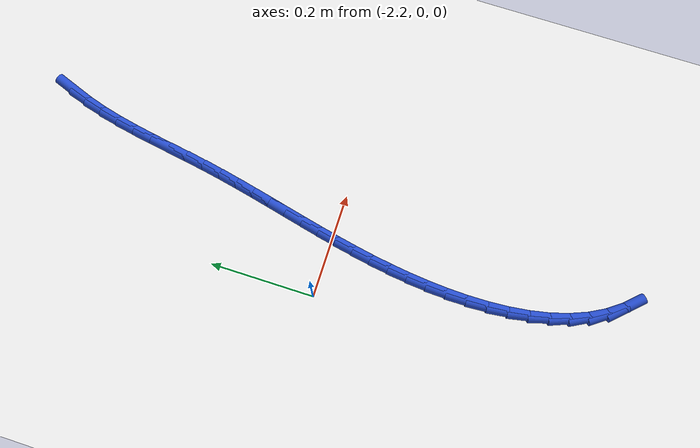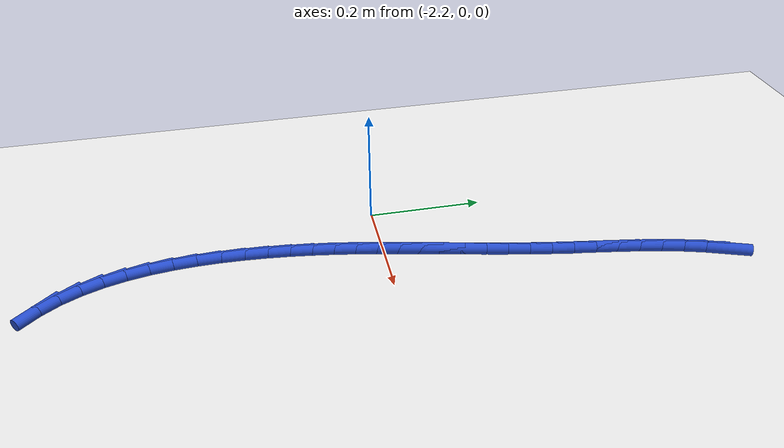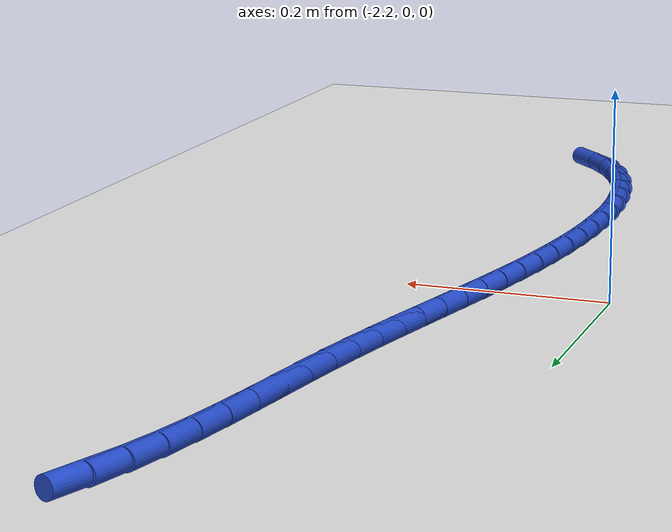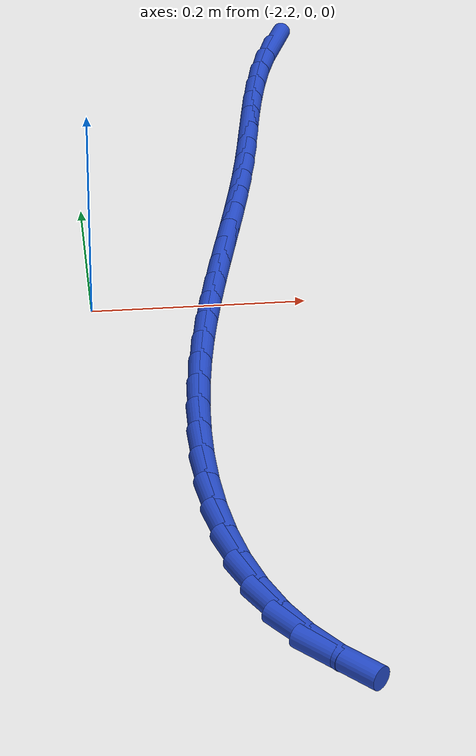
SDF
<sdf version="1.6">
 <world name="default">
  <model name="ground_plane">
   <static>1</static>
   <link name="link">
    <collision name="collision">
     <geometry><plane><normal>0 0 1</normal><size>100 100</size></plane></geometry>
     <surface><friction><ode><mu>100</mu><mu2>50</mu2></ode></friction></surface>
    </collision>
    <visual name="visual">
     <cast_shadows>0</cast_shadows>
     <geometry><plane><normal>0 0 1</normal><size>100 100</size></plane></geometry>
     <material>
      <script><uri>file://media/materials/scripts/gazebo.material</uri><name>Gazebo/WhiteGlow</name></script>
     </material>
    </visual>
   </link>
  </model>
  <model name="line">
   <link name="link_79">
    <pose>-1.9620376920560596 0.5663185615961986 0.01 0 1.57 1.2178457590242198</pose>
    <collision name="collision">
     <geometry><cylinder><radius>0.01</radius><length>0.08</length></cylinder></geometry>
    </collision>
    <visual name="visual">
     <material>
      <script><name>Gazebo/Blue</name><uri>file://media/materials/scripts/gazebo.material</uri></script>
     </material>
     <geometry><cylinder><radius>0.01</radius><length>0.08</length></cylinder></geometry>
    </visual>
   </link>
   <link name="link_80">
    <pose>-1.9745349150667229 0.5323933633324518 0.01 0 1.57 1.2811137499216871</pose>
    <collision name="collision">
     <geometry><cylinder><radius>0.01</radius><length>0.08</length></cylinder></geometry>
    </collision>
    <visual name="visual">
     <material>
      <script><name>Gazebo/Blue</name><uri>file://media/materials/scripts/gazebo.material</uri></script>
     </material>
     <geometry><cylinder><radius>0.01</radius><length>0.08</length></cylinder></geometry>
    </visual>
   </link>
   <link name="link_81">
    <pose>-1.9850283503999318 0.49718842359990556 0.01 0 1.57 1.3306486164743747</pose>
    <collision name="collision">
     <geometry><cylinder><radius>0.01</radius><length>0.08</length></cylinder></geometry>
    </collision>
    <visual name="visual">
     <material>
      <script><name>Gazebo/Blue</name><uri>file://media/materials/scripts/gazebo.material</uri></script>
     </material>
     <geometry><cylinder><radius>0.01</radius><length>0.08</length></cylinder></geometry>
    </visual>
   </link>
   <link name="link_82">
    <pose>-1.9938964997957358 0.46097316174443836 0.01 0 1.57 1.3674203378683245</pose>
    <collision name="collision">
     <geometry><cylinder><radius>0.01</radius><length>0.08</length></cylinder></geometry>
    </collision>
    <visual name="visual">
     <material>
      <script><name>Gazebo/Blue</name><uri>file://media/materials/scripts/gazebo.material</uri></script>
     </material>
     <geometry><cylinder><radius>0.01</radius><length>0.08</length></cylinder></geometry>
    </visual>
   </link>
   <link name="link_83">
    <pose>-2.001517864994184 0.4240169971119282 0.01 0 1.57 1.392286598869336</pose>
    <collision name="collision">
     <geometry><cylinder><radius>0.01</radius><length>0.08</length></cylinder></geometry>
    </collision>
    <visual name="visual">
     <material>
      <script><name>Gazebo/Blue</name><uri>file://media/materials/scripts/gazebo.material</uri></script>
     </material>
     <geometry><cylinder><radius>0.01</radius><length>0.08</length></cylinder></geometry>
    </visual>
   </link>
   <link name="link_84">
    <pose>-2.008270947735328 0.38658934904825243 0.01 0 1.57 1.4058626970710961</pose>
    <collision name="collision">
     <geometry><cylinder><radius>0.01</radius><length>0.08</length></cylinder></geometry>
    </collision>
    <visual name="visual">
     <material>
      <script><name>Gazebo/Blue</name><uri>file://media/materials/scripts/gazebo.material</uri></script>
     </material>
     <geometry><cylinder><radius>0.01</radius><length>0.08</length></cylinder></geometry>
    </visual>
   </link>
   <link name="link_85">
    <pose>-2.0145342497592167 0.34895963689928927 0.01 0 1.57 1.408456044278473</pose>
    <collision name="collision">
     <geometry><cylinder><radius>0.01</radius><length>0.08</length></cylinder></geometry>
    </collision>
    <visual name="visual">
     <material>
      <script><name>Gazebo/Blue</name><uri>file://media/materials/scripts/gazebo.material</uri></script>
     </material>
     <geometry><cylinder><radius>0.01</radius><length>0.08</length></cylinder></geometry>
    </visual>
   </link>
   <link name="link_86">
    <pose>-2.0206862728058987 0.3113972800109169 0.01 0 1.57 1.400033932852301</pose>
    <collision name="collision">
     <geometry><cylinder><radius>0.01</radius><length>0.08</length></cylinder></geometry>
    </collision>
    <visual name="visual">
     <material>
      <script><name>Gazebo/Blue</name><uri>file://media/materials/scripts/gazebo.material</uri></script>
     </material>
     <geometry><cylinder><radius>0.01</radius><length>0.08</length></cylinder></geometry>
    </visual>
   </link>
   <link name="link_87">
    <pose>-2.027105518615425 0.2741716977290123 0.01 0 1.57 1.3825338629292288</pose>
    <collision name="collision">
     <geometry><cylinder><radius>0.01</radius><length>0.08</length></cylinder></geometry>
    </collision>
    <visual name="visual">
     <material>
      <script><name>Gazebo/Blue</name><uri>file://media/materials/scripts/gazebo.material</uri></script>
     </material>
     <geometry><cylinder><radius>0.01</radius><length>0.08</length></cylinder></geometry>
    </visual>
   </link>
   <link name="link_88">
    <pose>-2.0340927615261264 0.23749684491850792 0.01 0 1.57 1.3660504790088808</pose>
    <collision name="collision">
     <geometry><cylinder><radius>0.01</radius><length>0.08</length></cylinder></geometry>
    </collision>
    <visual name="visual">
     <material>
      <script><name>Gazebo/Blue</name><uri>file://media/materials/scripts/gazebo.material</uri></script>
     </material>
     <geometry><cylinder><radius>0.01</radius><length>0.08</length></cylinder></geometry>
    </visual>
   </link>
   <link name="link_89">
    <pose>-2.0416012135900243 0.2013386640139712 0.01 0 1.57 1.3536618402424256</pose>
    <collision name="collision">
     <geometry><cylinder><radius>0.01</radius><length>0.08</length></cylinder></geometry>
    </collision>
    <visual name="visual">
     <material>
      <script><name>Gazebo/Blue</name><uri>file://media/materials/scripts/gazebo.material</uri></script>
     </material>
     <geometry><cylinder><radius>0.01</radius><length>0.08</length></cylinder></geometry>
    </visual>
   </link>
   <link name="link_90">
    <pose>-2.0494869780217764 0.16559380282361508 0.01 0 1.57 1.3455549843047392</pose>
    <collision name="collision">
     <geometry><cylinder><radius>0.01</radius><length>0.08</length></cylinder></geometry>
    </collision>
    <visual name="visual">
     <material>
      <script><name>Gazebo/Blue</name><uri>file://media/materials/scripts/gazebo.material</uri></script>
     </material>
     <geometry><cylinder><radius>0.01</radius><length>0.08</length></cylinder></geometry>
    </visual>
   </link>
   <link name="link_91">
    <pose>-2.0576061535836447 0.13015890597852434 0.01 0 1.57 1.3418672281104156</pose>
    <collision name="collision">
     <geometry><cylinder><radius>0.01</radius><length>0.08</length></cylinder></geometry>
    </collision>
    <visual name="visual">
     <material>
      <script><name>Gazebo/Blue</name><uri>file://media/materials/scripts/gazebo.material</uri></script>
     </material>
     <geometry><cylinder><radius>0.01</radius><length>0.08</length></cylinder></geometry>
    </visual>
   </link>
   <link name="link_92">
    <pose>-2.0658148390378916 0.09493061810978483 0.01 0 1.57 1.3426864507366176</pose>
    <collision name="collision">
     <geometry><cylinder><radius>0.01</radius><length>0.08</length></cylinder></geometry>
    </collision>
    <visual name="visual">
     <material>
      <script><name>Gazebo/Blue</name><uri>file://media/materials/scripts/gazebo.material</uri></script>
     </material>
     <geometry><cylinder><radius>0.01</radius><length>0.08</length></cylinder></geometry>
    </visual>
   </link>
   <link name="link_93">
    <pose>-2.0739691331467762 0.05980558384848233 0.01 0 1.57 1.348050337753554</pose>
    <collision name="collision">
     <geometry><cylinder><radius>0.01</radius><length>0.08</length></cylinder></geometry>
    </collision>
    <visual name="visual">
     <material>
      <script><name>Gazebo/Blue</name><uri>file://media/materials/scripts/gazebo.material</uri></script>
     </material>
     <geometry><cylinder><radius>0.01</radius><length>0.08</length></cylinder></geometry>
    </visual>
   </link>
   <link name="link_94">
    <pose>-2.081925134672563 0.024680447825701717 0.01 0 1.57 1.3579443616122902</pose>
    <collision name="collision">
     <geometry><cylinder><radius>0.01</radius><length>0.08</length></cylinder></geometry>
    </collision>
    <visual name="visual">
     <material>
      <script><name>Gazebo/Blue</name><uri>file://media/materials/scripts/gazebo.material</uri></script>
     </material>
     <geometry><cylinder><radius>0.01</radius><length>0.08</length></cylinder></geometry>
    </visual>
   </link>
   <link name="link_95">
    <pose>-2.0895389423775126 -0.010548145327471177 0.01 0 1.57 1.3722984757282812</pose>
    <collision name="collision">
     <geometry><cylinder><radius>0.01</radius><length>0.08</length></cylinder></geometry>
    </collision>
    <visual name="visual">
     <material>
      <script><name>Gazebo/Blue</name><uri>file://media/materials/scripts/gazebo.material</uri></script>
     </material>
     <geometry><cylinder><radius>0.01</radius><length>0.08</length></cylinder></geometry>
    </visual>
   </link>
   <link name="link_96">
    <pose>-2.096666655023886 -0.04598355097995082 0.01 0 1.57 1.3909828745682344</pose>
    <collision name="collision">
     <geometry><cylinder><radius>0.01</radius><length>0.08</length></cylinder></geometry>
    </collision>
    <visual name="visual">
     <material>
      <script><name>Gazebo/Blue</name><uri>file://media/materials/scripts/gazebo.material</uri></script>
     </material>
     <geometry><cylinder><radius>0.01</radius><length>0.08</length></cylinder></geometry>
    </visual>
   </link>
   <link name="link_97">
    <pose>-2.103164371373946 -0.08172912450065178 0.01 0 1.57 1.4138035531262156</pose>
    <collision name="collision">
     <geometry><cylinder><radius>0.01</radius><length>0.08</length></cylinder></geometry>
    </collision>
    <visual name="visual">
     <material>
      <script><name>Gazebo/Blue</name><uri>file://media/materials/scripts/gazebo.material</uri></script>
     </material>
     <geometry><cylinder><radius>0.01</radius><length>0.08</length></cylinder></geometry>
    </visual>
   </link>
   <link name="link_98">
    <pose>-2.108888190189954 -0.11788822125848772 0.01 0 1.57 1.4404987367272715</pose>
    <collision name="collision">
     <geometry><cylinder><radius>0.01</radius><length>0.08</length></cylinder></geometry>
    </collision>
    <visual name="visual">
     <material>
      <script><name>Gazebo/Blue</name><uri>file://media/materials/scripts/gazebo.material</uri></script>
     </material>
     <geometry><cylinder><radius>0.01</radius><length>0.08</length></cylinder></geometry>
    </visual>
   </link>
   <link name="link_99">
    <pose>-2.1136942102341703 -0.15456419662237467 0.01 0 1.57 1.4707374738841688</pose>
    <collision name="collision">
     <geometry><cylinder><radius>0.01</radius><length>0.08</length></cylinder></geometry>
    </collision>
    <visual name="visual">
     <material>
      <script><name>Gazebo/Blue</name><uri>file://media/materials/scripts/gazebo.material</uri></script>
     </material>
     <geometry><cylinder><radius>0.01</radius><length>0.08</length></cylinder></geometry>
    </visual>
   </link>
   <link name="link_100">
    <pose>-2.1174385302688585 -0.19186040596122644 0.01 0 1.57 1.504144030951073</pose>
    <collision name="collision">
     <geometry><cylinder><radius>0.01</radius><length>0.08</length></cylinder></geometry>
    </collision>
    <visual name="visual">
     <material>
      <script><name>Gazebo/Blue</name><uri>file://media/materials/scripts/gazebo.material</uri></script>
     </material>
     <geometry><cylinder><radius>0.01</radius><length>0.08</length></cylinder></geometry>
    </visual>
   </link>
   <link name="link_101">
    <pose>-2.1199761056431448 -0.2298758483172222 0.01 0 1.57 1.5415327328903567</pose>
    <collision name="collision">
     <geometry><cylinder><radius>0.01</radius><length>0.08</length></cylinder></geometry>
    </collision>
    <visual name="visual">
     <material>
      <script><name>Gazebo/Blue</name><uri>file://media/materials/scripts/gazebo.material</uri></script>
     </material>
     <geometry><cylinder><radius>0.01</radius><length>0.08</length></cylinder></geometry>
    </visual>
   </link>
   <link name="link_102">
    <pose>-2.121106686286746 -0.26849919381707205 0.01 0 1.57 -1.5564927668727688</pose>
    <collision name="collision">
     <geometry><cylinder><radius>0.01</radius><length>0.08</length></cylinder></geometry>
    </collision>
    <visual name="visual">
     <material>
      <script><name>Gazebo/Blue</name><uri>file://media/materials/scripts/gazebo.material</uri></script>
     </material>
     <geometry><cylinder><radius>0.01</radius><length>0.08</length></cylinder></geometry>
    </visual>
   </link>
   <link name="link_103">
    <pose>-2.1205513799651956 -0.3073194912590025 0.01 0 1.57 -1.5054184110264377</pose>
    <collision name="collision">
     <geometry><cylinder><radius>0.01</radius><length>0.08</length></cylinder></geometry>
    </collision>
    <visual name="visual">
     <material>
      <script><name>Gazebo/Blue</name><uri>file://media/materials/scripts/gazebo.material</uri></script>
     </material>
     <geometry><cylinder><radius>0.01</radius><length>0.08</length></cylinder></geometry>
    </visual>
   </link>
   <link name="link_104">
    <pose>-2.1180252789256797 -0.3459028707230559 0.01 0 1.57 -1.445331771218651</pose>
    <collision name="collision">
     <geometry><cylinder><radius>0.01</radius><length>0.08</length></cylinder></geometry>
    </collision>
    <visual name="visual">
     <material>
      <script><name>Gazebo/Blue</name><uri>file://media/materials/scripts/gazebo.material</uri></script>
     </material>
     <geometry><cylinder><radius>0.01</radius><length>0.08</length></cylinder></geometry>
    </visual>
   </link>
   <link name="link_105">
    <pose>-2.1132434754153855 -0.3838154622892738 0.01 0 1.57 -1.3744242978768375</pose>
    <collision name="collision">
     <geometry><cylinder><radius>0.01</radius><length>0.08</length></cylinder></geometry>
    </collision>
    <visual name="visual">
     <material>
      <script><name>Gazebo/Blue</name><uri>file://media/materials/scripts/gazebo.material</uri></script>
     </material>
     <geometry><cylinder><radius>0.01</radius><length>0.08</length></cylinder></geometry>
    </visual>
   </link>
   <link name="link_106">
    <pose>-2.105921061681498 -0.42062339603770005 0.01 0 1.57 -1.2906375982193614</pose>
    <collision name="collision">
     <geometry><cylinder><radius>0.01</radius><length>0.08</length></cylinder></geometry>
    </collision>
    <visual name="visual">
     <material>
      <script><name>Gazebo/Blue</name><uri>file://media/materials/scripts/gazebo.material</uri></script>
     </material>
     <geometry><cylinder><radius>0.01</radius><length>0.08</length></cylinder></geometry>
    </visual>
   </link>
   <link name="link_107">
    <pose>-2.0957731299712057 -0.4558928020483767 0.01 0 1.57 -1.1918558901516383</pose>
    <collision name="collision">
     <geometry><cylinder><radius>0.01</radius><length>0.08</length></cylinder></geometry>
    </collision>
    <visual name="visual">
     <material>
      <script><name>Gazebo/Blue</name><uri>file://media/materials/scripts/gazebo.material</uri></script>
     </material>
     <geometry><cylinder><radius>0.01</radius><length>0.08</length></cylinder></geometry>
    </visual>
   </link>
   <link name="link_108">
    <pose>-2.0825147725316935 -0.4891898104013455 0.01 0 1.57 -1.076347780884253</pose>
    <collision name="collision">
     <geometry><cylinder><radius>0.01</radius><length>0.08</length></cylinder></geometry>
    </collision>
    <visual name="visual">
     <material>
      <script><name>Gazebo/Blue</name><uri>file://media/materials/scripts/gazebo.material</uri></script>
     </material>
     <geometry><cylinder><radius>0.01</radius><length>0.08</length></cylinder></geometry>
    </visual>
   </link>
   <link name="link_109">
    <pose>-2.0658610816101493 -0.5200805511766491 0.01 0 1.57 -0.9439127349706684</pose>
    <collision name="collision">
     <geometry><cylinder><radius>0.01</radius><length>0.08</length></cylinder></geometry>
    </collision>
    <visual name="visual">
     <material>
      <script><name>Gazebo/Blue</name><uri>file://media/materials/scripts/gazebo.material</uri></script>
     </material>
     <geometry><cylinder><radius>0.01</radius><length>0.08</length></cylinder></geometry>
    </visual>
   </link>
   <link name="link_110">
    <pose>-2.0455358141874385 -0.5481404663653563 0.01 0 1.57 -0.8111838671554281</pose>
    <collision name="collision">
     <geometry><cylinder><radius>0.01</radius><length>0.08</length></cylinder></geometry>
    </collision>
    <visual name="visual">
     <material>
      <script><name>Gazebo/Blue</name><uri>file://media/materials/scripts/gazebo.material</uri></script>
     </material>
     <geometry><cylinder><radius>0.01</radius><length>0.08</length></cylinder></geometry>
    </visual>
   </link>
  </model>
 </world>
</sdf>
